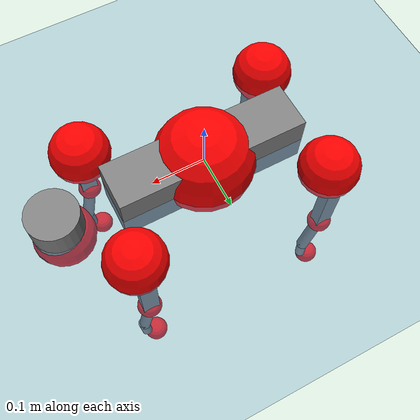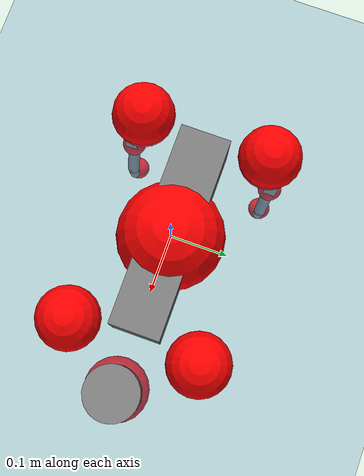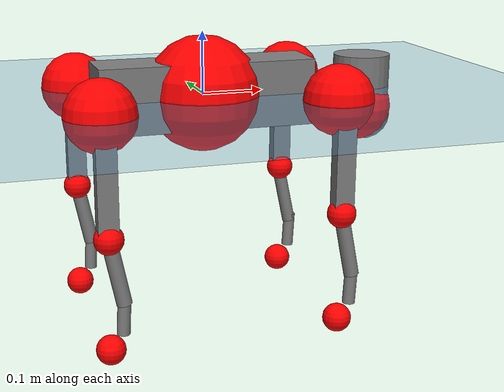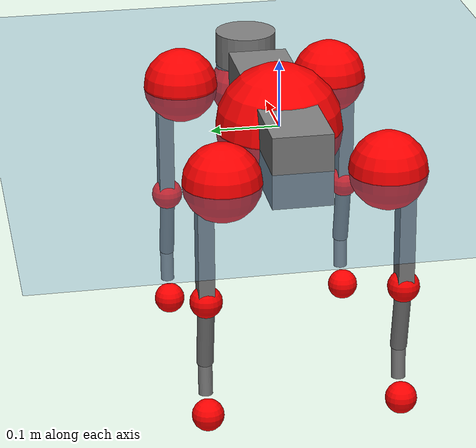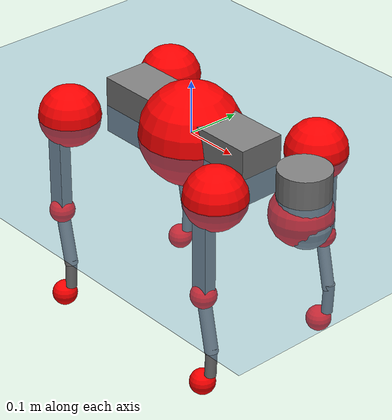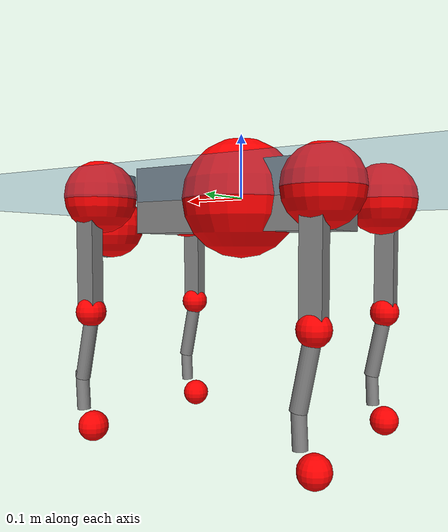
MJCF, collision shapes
<mujoco model="go2">
  <compiler angle="radian" assetdir="assets" balanceinertia="true" inertiafromgeom="false"/>

  <option timestep="0.005" density="1.2" viscosity="2e-05"/>

  <size nkey="1"/>

  <visual>
    <quality shadowsize="8192"/>
    <map shadowclip="0.5"/>
  </visual>

  <default>
    <default class="/">
      <geom contype="0" conaffinity="0" group="1" solref="-1000 -80"/>
      <site size="0.01 0.005 0.005" group="5"/>
      <general forcelimited="true" biastype="affine" gainprm="20" biasprm="0 -20 -0.5"/>
      <default class="go2">
        <joint armature="0.01" damping="0.01" frictionloss="0.2"/>
        <geom condim="1" margin="0.001"/>
        <default class="visual">
          <geom type="mesh" group="2"/>
        </default>
        <default class="collision">
          <geom group="3"/>
          <default class="foot">
            <geom size="0.022 0 0" condim="6" priority="1" friction="0.8 0.02 0.01" solimp="0.015 1 0.022"/>
          </default>
        </default>
        <default class="reward_collision_sphere">
          <geom group="5" rgba="1 0 0 1"/>
        </default>
      </default>
    </default>
  </default>

  <asset>
    <texture type="skybox" colorspace="auto" name="//unnamed_texture_0" builtin="gradient" rgb1="0.95 0.95 0.95" rgb2="0.95 0.95 0.95" width="100" height="600"/>
    <texture type="2d" colorspace="auto" name="texplane" builtin="checker" rgb1="0.345 0.575 0.748" rgb2="0.345 0.575 0.748" markrgb="1 1 1" width="512" height="512"/>
    <material name="MatPlane" class="/" texture="texplane" texuniform="true" texrepeat="2 2" specular="0.9"/>
    <material name="metal" class="/" rgba="0.9 0.95 0.95 1"/>
    <material name="black" class="/" rgba="0 0 0 1"/>
    <material name="white" class="/"/>
    <material name="gray" class="/" rgba="0.671705 0.692426 0.77427 1"/>
    <mesh name="base_0" class="/" file="base_0.obj"/>
    <mesh name="base_1" class="/" file="base_1.obj"/>
    <mesh name="base_2" class="/" file="base_2.obj"/>
    <mesh name="base_3" class="/" file="base_3.obj"/>
    <mesh name="base_4" class="/" file="base_4.obj"/>
    <mesh name="hip_0" class="/" file="hip_0.obj"/>
    <mesh name="hip_1" class="/" file="hip_1.obj"/>
    <mesh name="thigh_0" class="/" file="thigh_0.obj"/>
    <mesh name="thigh_1" class="/" file="thigh_1.obj"/>
    <mesh name="thigh_mirror_0" class="/" file="thigh_mirror_0.obj"/>
    <mesh name="thigh_mirror_1" class="/" file="thigh_mirror_1.obj"/>
    <mesh name="calf_0" class="/" file="calf_0.obj"/>
    <mesh name="calf_1" class="/" file="calf_1.obj"/>
    <mesh name="calf_mirror_0" class="/" file="calf_mirror_0.obj"/>
    <mesh name="calf_mirror_1" class="/" file="calf_mirror_1.obj"/>
    <mesh name="foot" class="/" file="foot.obj"/>
  </asset>

  <worldbody>
    <geom name="floor" class="/" size="100 100 0.125" type="plane" group="0" material="MatPlane"/>
    <light name="toplight_shadow" class="/" pos="0 0 5" dir="0.0990148 0.0990148 -0.990148" type="directional" ambient="0.04 0.04 0.04" diffuse="0.55 0.55 0.55" specular="0.12 0.12 0.12"/>
    <light name="toplight_fill" class="/" pos="0 0 5" dir="0.0990148 0.0990148 -0.990148" type="directional" castshadow="false" ambient="0.04 0.04 0.04" diffuse="0.3 0.3 0.3" specular="0.08 0.08 0.08"/>
    <body name="trunk" childclass="go2" pos="5.72424e-05 4.06253e-05 0.000860323" quat="1 -2.37583e-05 -2.08881e-05 -1.43676e-05">
      <inertial pos="0.0199783 -7.60815e-05 -0.00524362" quat="-0.000598743 0.713365 -0.00161183 0.70079" mass="5.66051" diaginertia="0.0910312 0.0932431 0.0101649"/>
      <joint name="//unnamed_joint_0" type="free" armature="0" damping="0" frictionloss="0"/>
      <geom name="//unnamed_geom_1" class="visual" material="black" mesh="base_0"/>
      <geom name="//unnamed_geom_2" class="visual" material="black" mesh="base_1"/>
      <geom name="//unnamed_geom_3" class="visual" material="black" mesh="base_2"/>
      <geom name="//unnamed_geom_4" class="visual" material="white" mesh="base_3"/>
      <geom name="//unnamed_geom_5" class="visual" material="gray" mesh="base_4"/>
      <geom name="trunk_1" class="collision" size="0.175237 0.0435532 0.0531023" type="box"/>
      <geom name="trunk_2" class="collision" size="0.0465809 0.0419228" pos="0.275807 0 0.00837749" type="cylinder"/>
      <geom name="trunk_3" class="collision" size="0.0437861" pos="0.283549 0 -0.050265"/>
      <geom name="//unnamed_geom_9" class="reward_collision_sphere" size="0.0931619"/>
      <geom name="//unnamed_geom_10" class="reward_collision_sphere" size="0.0558971" pos="0.270968 0 -0.0376987"/>
      <site name="imu" pos="-0.0238931 0.00359423 0.0355936" size="0.00931619"/>
      <camera name="track" pos="0 -1.97873 0" quat="0.707107 0.707107 0 0" mode="trackcom"/>
      <camera name="ego_camera" pos="0.301936 0 0.0376987" quat="-0.5 -0.5 0.5 0.5"/>
      <body name="FL_hip" pos="0.186713 0.0467835 0.00175959" quat="1 0.000246054 -1.07643e-05 -6.56403e-05">
        <inertial pos="-0.00471127 0.00213583 0.000517398" quat="0.497124 0.498974 0.505761 0.498095" mass="0.542283" diaginertia="0.000746126 0.000566846 0.000195168"/>
        <joint name="FL_hip_joint" pos="0 0 0" axis="0.999994 0.00352006 0.000765541" stiffness="0.00134607" range="-1.04535 1.04775" armature="0.00894943" damping="0.00394499" frictionloss="0.191521"/>
        <geom name="//unnamed_geom_11" class="visual" material="metal" mesh="hip_0"/>
        <geom name="//unnamed_geom_12" class="visual" material="gray" mesh="hip_1"/>
        <geom name="//unnamed_geom_13" class="collision" size="0.0428545 0.0186324" pos="0 0.079149 0" quat="0.707107 0.707107 0 0" type="cylinder"/>
        <geom name="//unnamed_geom_14" class="reward_collision_sphere" size="0.0558971" pos="0 0.0692554 0"/>
        <body name="FL_thigh" pos="-0.000317293 0.0948657 0.00153785" quat="1 0.000153757 7.54417e-05 7.90441e-05">
          <inertial pos="-0.00396264 -0.0218195 -0.0266606" quat="0.829708 0.0845459 -0.0202067 0.551388" mass="0.940228" diaginertia="0.00506941 0.00550568 0.000362002"/>
          <joint name="FL_thigh_joint" pos="0 0 0" axis="-0.000389208 0.999999 0.00119456" stiffness="0.00405574" range="-1.54991 3.48429" armature="0.00952606" damping="0.00689177" frictionloss="0.183892"/>
          <geom name="//unnamed_geom_15" class="visual" material="metal" mesh="thigh_0"/>
          <geom name="//unnamed_geom_16" class="visual" material="gray" mesh="thigh_1"/>
          <geom name="//unnamed_geom_17" class="collision" size="0.0992174 0.0114123 0.0158375" pos="0 0 -0.0892203" quat="0.707107 0 0.707107 0" type="box"/>
          <body name="FL_calf" pos="0.000287803 -0.00145734 -0.179075" quat="1 1.54756e-05 2.48062e-06 3.85473e-05">
            <inertial pos="0.00648408 -0.000514625 -0.117722" quat="0.710743 0.00170202 -0.00421253 0.703437" mass="0.196929" diaginertia="0.00126534 0.00139384 2.20686e-05"/>
            <joint name="FL_calf_joint" pos="0 0 0" axis="0.00554848 0.999983 -0.00166593" stiffness="0.000636467" range="-2.72675 -0.84264" armature="0.00932262" damping="0" frictionloss="0.194427"/>
            <geom name="//unnamed_geom_18" class="visual" material="gray" mesh="calf_0"/>
            <geom name="//unnamed_geom_19" class="visual" material="black" mesh="calf_1"/>
            <geom name="FL_calf0" class="collision" size="0.0111794 0.0558971" pos="0.00774195 0 -0.050265" quat="0.994493 0 -0.104807 0" type="cylinder"/>
            <geom name="//unnamed_geom_21" class="collision" size="0.0102478 0.0302776" pos="0.0193549 0 -0.123987" quat="0.999688 0 0.0249974 0" type="cylinder"/>
            <geom name="//unnamed_geom_22" class="visual" pos="0 0 -0.178441" quat="1 0 0 0" material="black" mesh="foot"/>
            <geom name="FL_foot" class="foot" size="0.0172176" pos="-0.00193549 0 -0.178441"/>
            <geom name="//unnamed_geom_24" class="reward_collision_sphere" size="0.0232905"/>
            <geom name="//unnamed_geom_25" class="reward_collision_sphere" size="0.0232905" pos="-0.00193549 0 -0.178441"/>
            <site name="FL_foot" class="foot" pos="-0.00193549 0 -0.178441" size="0.00931619"/>
          </body>
        </body>
      </body>
      <body name="FR_hip" pos="0.187388 -0.044574 0.000159163" quat="1 -3.30467e-05 -0.000417698 1.30888e-05">
        <inertial pos="-0.00513354 -0.00209661 -0.000740422" quat="0.498186 0.505531 0.499572 0.496666" mass="0.552236" diaginertia="0.000755288 0.000570428 0.000198155"/>
        <joint name="FR_hip_joint" pos="0 0 0" axis="1 -2.6844e-05 -0.000273524" range="-1.06379 1.04934" armature="0.009242" damping="0.0141107" frictionloss="0.194561"/>
        <geom name="//unnamed_geom_26" class="visual" pos="0 1.3208e-09 5.66517e-08" quat="4.63268e-05 1 0 0" material="metal" mesh="hip_0"/>
        <geom name="//unnamed_geom_27" class="visual" pos="0 2.14117e-09 -1.40121e-07" quat="4.63268e-05 1 0 0" material="gray" mesh="hip_1"/>
        <geom name="//unnamed_geom_28" class="collision" size="0.0428545 0.0186324" pos="0 -0.079149 0" quat="0.707107 0.707107 0 0" type="cylinder"/>
        <geom name="//unnamed_geom_29" class="reward_collision_sphere" size="0.0558971" pos="0 -0.0692554 0"/>
        <body name="FR_thigh" pos="0.000827013 -0.0947832 0.00051026" quat="1 2.2974e-05 1.62977e-05 1.8605e-05">
          <inertial pos="-0.0038032 0.0221103 -0.0273199" quat="0.552021 -0.0205639 0.0849219 0.829239" mass="0.944361" diaginertia="0.00508851 0.00559446 0.000366923"/>
          <joint name="FR_thigh_joint" pos="0 0 0" axis="0.00141779 -0.999992 -0.00379685" range="-3.47881 1.56997" armature="0.00941409" damping="0.0145669" frictionloss="0.181998"/>
          <geom name="//unnamed_geom_30" class="visual" material="metal" mesh="thigh_mirror_0"/>
          <geom name="//unnamed_geom_31" class="visual" material="gray" mesh="thigh_mirror_1"/>
          <geom name="//unnamed_geom_32" class="collision" size="0.0992174 0.0114123 0.0158375" pos="0 0 -0.0892203" quat="0.707107 0 0.707107 0" type="box"/>
          <body name="FR_calf" pos="-0.000263032 -0.000203254 -0.178953" quat="1 4.49872e-05 0.000192282 9.61099e-05">
            <inertial pos="0.00599997 0.000172511 -0.118394" quat="0.703932 -0.00629709 0.00222011 0.710236" mass="0.192941" diaginertia="0.00124964 0.00138232 2.1843e-05"/>
            <joint name="FR_calf_joint" pos="0 0 0" axis="0.0046782 -0.999976 -0.00512126" range="0.844106 2.73252" armature="0.00940284" damping="0.00684942" frictionloss="0.180454"/>
            <geom name="//unnamed_geom_33" class="visual" material="gray" mesh="calf_mirror_0"/>
            <geom name="//unnamed_geom_34" class="visual" material="black" mesh="calf_mirror_1"/>
            <geom name="FR_calf0" class="collision" size="0.012111 0.0558971" pos="0.00967744 0 -0.050265" quat="0.995004 0 -0.0998334 0" type="cylinder"/>
            <geom name="//unnamed_geom_36" class="collision" size="0.0102478 0.0302776" pos="0.0193549 0 -0.123987" quat="0.999688 0 0.0249974 0" type="cylinder"/>
            <geom name="//unnamed_geom_37" class="visual" pos="0 0 -0.178441" quat="1 0 0 0" material="black" mesh="foot"/>
            <geom name="FR_foot" class="foot" size="0.0212823" pos="-0.00193549 0 -0.178441"/>
            <geom name="//unnamed_geom_39" class="reward_collision_sphere" size="0.0232905"/>
            <geom name="//unnamed_geom_40" class="reward_collision_sphere" size="0.0232905" pos="-0.00193549 0 -0.178441"/>
            <site name="FR_foot" class="foot" pos="-0.00193549 0 -0.178441" size="0.00931619"/>
          </body>
        </body>
      </body>
      <body name="RL_hip" pos="-0.187804 0.0457318 -0.000514297" quat="1 -7.16846e-05 4.06687e-05 4.7336e-05">
        <inertial pos="0.00571335 0.00282557 0.00045474" quat="0.502921 0.497131 0.500174 0.499757" mass="0.542999" diaginertia="0.000752036 0.000558586 0.000198797"/>
        <joint name="RL_hip_joint" pos="0 0 0" axis="-0.999885 0.00130755 0.0151388" stiffness="0.00214909" range="-1.03927 1.05651" armature="0.00936644" damping="0.0167522" frictionloss="0.18054"/>
        <geom name="//unnamed_geom_41" class="visual" pos="-1.13246e-09 0 -2.21989e-07" quat="4.63268e-05 0 1 0" material="metal" mesh="hip_0"/>
        <geom name="//unnamed_geom_42" class="visual" pos="-1.83586e-09 0 -1.96872e-07" quat="4.63268e-05 0 1 0" material="gray" mesh="hip_1"/>
        <geom name="//unnamed_geom_43" class="collision" size="0.0428545 0.0186324" pos="0 0.079149 0" quat="0.707107 0.707107 0 0" type="cylinder"/>
        <geom name="//unnamed_geom_44" class="reward_collision_sphere" size="0.0558971" pos="0 0.0692554 0"/>
        <body name="RL_thigh" pos="0.000259066 0.0949444 -0.00048978" quat="1 -0.000213059 -0.000250695 -0.000127281">
          <inertial pos="-0.00369163 -0.0209789 -0.0274569" quat="0.82955 0.0848691 -0.0202618 0.551573" mass="0.938812" diaginertia="0.00503001 0.00558785 0.00036024"/>
          <joint name="RL_thigh_joint" pos="0 0 0" axis="0.000749998 0.999998 0.00167511" range="-0.520723 4.54086" armature="0.00936486" damping="0.00957837" frictionloss="0.186147"/>
          <geom name="//unnamed_geom_45" class="visual" material="metal" mesh="thigh_0"/>
          <geom name="//unnamed_geom_46" class="visual" material="gray" mesh="thigh_1"/>
          <geom name="//unnamed_geom_47" class="collision" size="0.0992174 0.0114123 0.0158375" pos="0 0 -0.0892203" quat="0.707107 0 0.707107 0" type="box"/>
          <body name="RL_calf" pos="-0.000260966 -0.000833588 -0.17827" quat="1 -6.61716e-05 0.00018016 -0.000106867">
            <inertial pos="0.00529795 -0.00082117 -0.117522" quat="0.710651 0.00140802 -0.00438012 0.70353" mass="0.197959" diaginertia="0.00127306 0.00139975 2.2389e-05"/>
            <joint name="RL_calf_joint" pos="0 0 0" axis="-0.00608015 0.999972 -0.00439004" range="-2.72213 -0.855072" armature="0.00939652" damping="0" frictionloss="0.181731"/>
            <geom name="//unnamed_geom_48" class="visual" material="gray" mesh="calf_0"/>
            <geom name="//unnamed_geom_49" class="visual" material="black" mesh="calf_1"/>
            <geom name="RL_calf0" class="collision" size="0.012111 0.0558971" pos="0.00967744 0 -0.050265" quat="0.995004 0 -0.0998334 0" type="cylinder"/>
            <geom name="//unnamed_geom_51" class="collision" size="0.0102478 0.0302776" pos="0.0193549 0 -0.123987" quat="0.999688 0 0.0249974 0" type="cylinder"/>
            <geom name="//unnamed_geom_52" class="visual" pos="0 0 -0.178441" quat="1 0 0 0" material="black" mesh="foot"/>
            <geom name="RL_foot" class="foot" size="0.0177702" pos="-0.00193549 0 -0.178441"/>
            <geom name="//unnamed_geom_54" class="reward_collision_sphere" size="0.0232905"/>
            <geom name="//unnamed_geom_55" class="reward_collision_sphere" size="0.0232905" pos="-0.00193549 0 -0.178441"/>
            <site name="RL_foot" class="foot" pos="-0.00193549 0 -0.178441" size="0.00931619"/>
          </body>
        </body>
      </body>
      <body name="RR_hip" pos="-0.187364 -0.0478359 -0.000578084" quat="1 1.13759e-05 3.83169e-05 -6.79985e-06">
        <inertial pos="0.00562577 -0.00239747 0.000144472" quat="0.500621 0.494687 0.499558 0.505079" mass="0.551084" diaginertia="0.000750482 0.000575055 0.000200284"/>
        <joint name="RR_hip_joint" pos="0 0 0" axis="-0.999998 0.000804556 -0.00196613" range="-1.0368 1.05666" armature="0.00948518" damping="0.00636597" frictionloss="0.178286"/>
        <geom name="//unnamed_geom_56" class="visual" pos="1.13321e-09 1.3208e-09 -2.7864e-07" quat="2.14617e-09 4.63268e-05 4.63268e-05 -1" material="metal" mesh="hip_0"/>
        <geom name="//unnamed_geom_57" class="visual" pos="1.83401e-09 2.14117e-09 -5.67512e-08" quat="2.14617e-09 4.63268e-05 4.63268e-05 -1" material="gray" mesh="hip_1"/>
        <geom name="//unnamed_geom_58" class="collision" size="0.0428545 0.0186324" pos="0 -0.079149 0" quat="0.707107 0.707107 0 0" type="cylinder"/>
        <geom name="//unnamed_geom_59" class="reward_collision_sphere" size="0.0558971" pos="0 -0.0692554 0"/>
        <body name="RR_thigh" pos="0.000288362 -0.0952986 -0.00217006" quat="1 2.45629e-05 5.54878e-05 -3.25305e-05">
          <inertial pos="-0.00345307 0.0228426 -0.0282389" quat="0.55406 -0.0182988 0.0835926 0.828067" mass="0.923546" diaginertia="0.00502088 0.00547649 0.000360667"/>
          <joint name="RR_thigh_joint" pos="0 0 0" axis="-0.00912083 -0.999952 0.00356965" range="-4.54145 0.524896" armature="0.00963458" damping="0.0162148" frictionloss="0.189399"/>
          <geom name="//unnamed_geom_60" class="visual" material="metal" mesh="thigh_mirror_0"/>
          <geom name="//unnamed_geom_61" class="visual" material="gray" mesh="thigh_mirror_1"/>
          <geom name="//unnamed_geom_62" class="collision" size="0.0992174 0.0114123 0.0158375" pos="0 0 -0.0892203" quat="0.707107 0 0.707107 0" type="box"/>
          <body name="RR_calf" pos="0.00119588 -0.000106874 -0.179179" quat="1 -0.000166052 -0.000178393 -0.000178149">
            <inertial pos="0.00540159 0.000515245 -0.118679" quat="0.703924 -0.00400344 0.000524297 0.710264" mass="0.196945" diaginertia="0.00127971 0.00139115 2.22845e-05"/>
            <joint name="RR_calf_joint" pos="0 0 0" axis="0.00573928 -0.999983 0.000351493" range="0.82498 2.72064" armature="0.00938279" damping="0.00934521" frictionloss="0.187125"/>
            <geom name="//unnamed_geom_63" class="visual" material="gray" mesh="calf_mirror_0"/>
            <geom name="//unnamed_geom_64" class="visual" material="black" mesh="calf_mirror_1"/>
            <geom name="RR_calf0" class="collision" size="0.012111 0.0558971" pos="0.00967744 0 -0.050265" quat="0.995004 0 -0.0998334 0" type="cylinder"/>
            <geom name="//unnamed_geom_66" class="collision" size="0.0102478 0.0302776" pos="0.0193549 0 -0.123987" quat="0.999688 0 0.0249974 0" type="cylinder"/>
            <geom name="//unnamed_geom_67" class="visual" pos="0 0 -0.178441" quat="1 0 0 0" material="black" mesh="foot"/>
            <geom name="RR_foot" class="foot" size="0.0211537" pos="-0.00193549 0 -0.178441"/>
            <geom name="//unnamed_geom_69" class="reward_collision_sphere" size="0.0232905"/>
            <geom name="//unnamed_geom_70" class="reward_collision_sphere" size="0.0232905" pos="-0.00193549 0 -0.178441"/>
            <site name="RR_foot" class="foot" pos="-0.00193549 0 -0.178441" size="0.00931619"/>
          </body>
        </body>
      </body>
    </body>
  </worldbody>

  <contact>
    <pair class="/" geom1="floor" geom2="FL_foot" name="//unnamed_contact_0"/>
    <pair class="/" geom1="floor" geom2="FR_foot" name="//unnamed_contact_1"/>
    <pair class="/" geom1="floor" geom2="RL_foot" name="//unnamed_contact_2"/>
    <pair class="/" geom1="floor" geom2="RR_foot" name="//unnamed_contact_3"/>
  </contact>

  <actuator>
    <general name="FL_hip" class="/" joint="FL_hip_joint" forcerange="-22.6534 22.6534" gainprm="18.7746" biasprm="0 -18.7746 -0.465664"/>
    <general name="FL_thigh" class="/" joint="FL_thigh_joint" forcerange="-21.6201 21.6201" gainprm="18.7746" biasprm="0 -18.7746 -0.465664"/>
    <general name="FL_calf" class="/" joint="FL_calf_joint" forcerange="-42.8179 42.8179" gainprm="18.7746" biasprm="0 -18.7746 -0.465664"/>
    <general name="FR_hip" class="/" joint="FR_hip_joint" forcerange="-21.6964 21.6964" gainprm="18.7746" biasprm="0 -18.7746 -0.465664"/>
    <general name="FR_thigh" class="/" joint="FR_thigh_joint" forcerange="-22.0896 22.0896" gainprm="18.7746" biasprm="0 -18.7746 -0.465664"/>
    <general name="FR_calf" class="/" joint="FR_calf_joint" forcerange="-42.5586 42.5586" gainprm="18.7746" biasprm="0 -18.7746 -0.465664"/>
    <general name="RL_hip" class="/" joint="RL_hip_joint" forcerange="-21.3517 21.3517" gainprm="18.7746" biasprm="0 -18.7746 -0.465664"/>
    <general name="RL_thigh" class="/" joint="RL_thigh_joint" forcerange="-22.0848 22.0848" gainprm="18.7746" biasprm="0 -18.7746 -0.465664"/>
    <general name="RL_calf" class="/" joint="RL_calf_joint" forcerange="-43.2989 43.2989" gainprm="18.7746" biasprm="0 -18.7746 -0.465664"/>
    <general name="RR_hip" class="/" joint="RR_hip_joint" forcerange="-21.6574 21.6574" gainprm="18.7746" biasprm="0 -18.7746 -0.465664"/>
    <general name="RR_thigh" class="/" joint="RR_thigh_joint" forcerange="-21.8419 21.8419" gainprm="18.7746" biasprm="0 -18.7746 -0.465664"/>
    <general name="RR_calf" class="/" joint="RR_calf_joint" forcerange="-41.9711 41.9711" gainprm="18.7746" biasprm="0 -18.7746 -0.465664"/>
  </actuator>

  <sensor>
    <gyro site="imu" name="imu_angular_velocity"/>
    <velocimeter site="imu" name="imu_linear_velocity"/>
    <framelinvel objtype="site" objname="FL_foot" name="FL_foot_global_linear_velocity"/>
    <framelinvel objtype="site" objname="FR_foot" name="FR_foot_global_linear_velocity"/>
    <framelinvel objtype="site" objname="RL_foot" name="RL_foot_global_linear_velocity"/>
    <framelinvel objtype="site" objname="RR_foot" name="RR_foot_global_linear_velocity"/>
  </sensor>

  <keyframe>
    <key name="home" qpos="0 0 0.325 1 0 0 0 0.1 0.8 -1.5 -0.1 -0.8 1.5 -0.1 0.8 -1.5 0.1 -0.8 1.5"/>
  </keyframe>
</mujoco>
